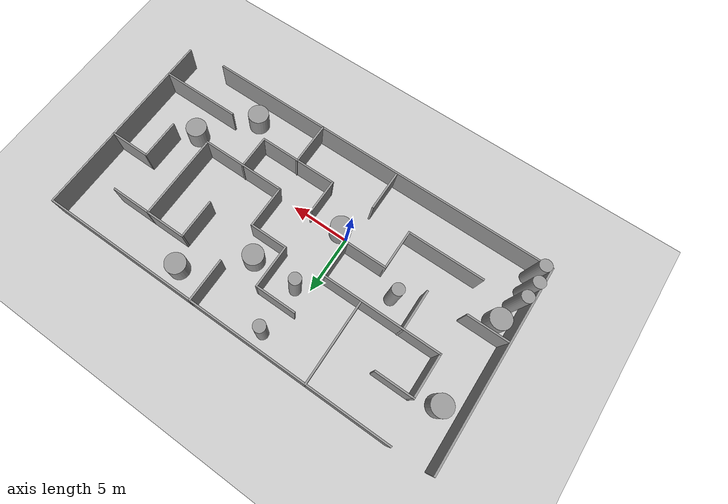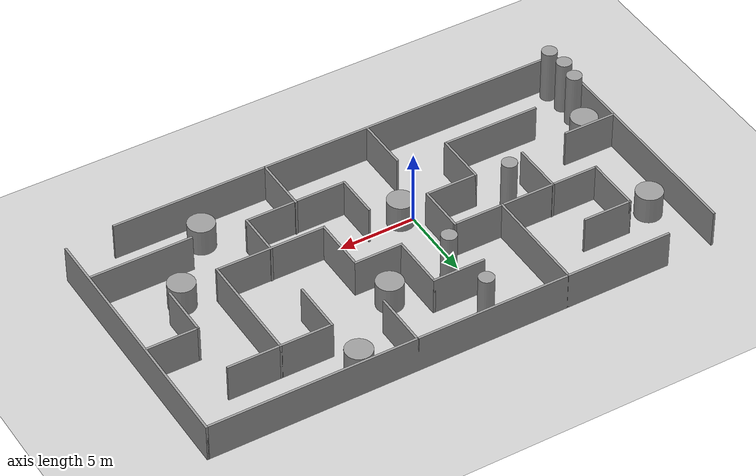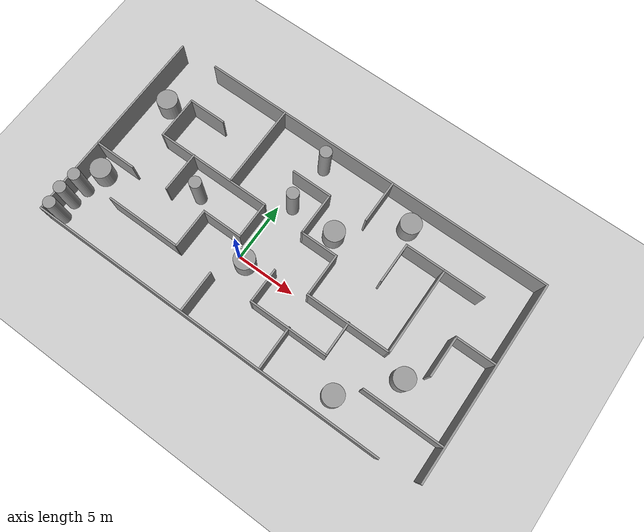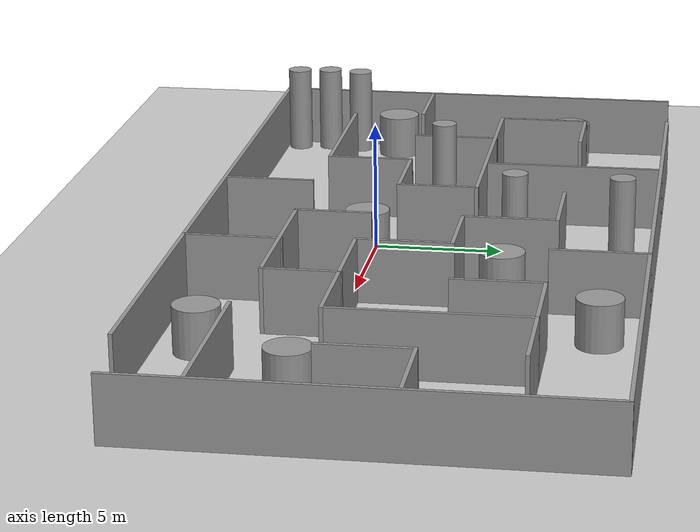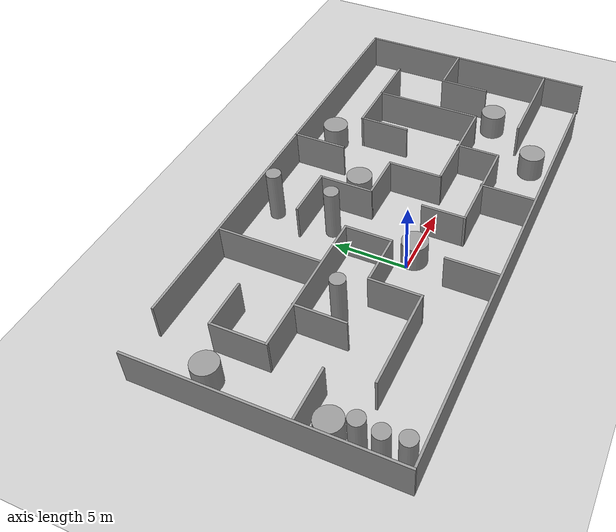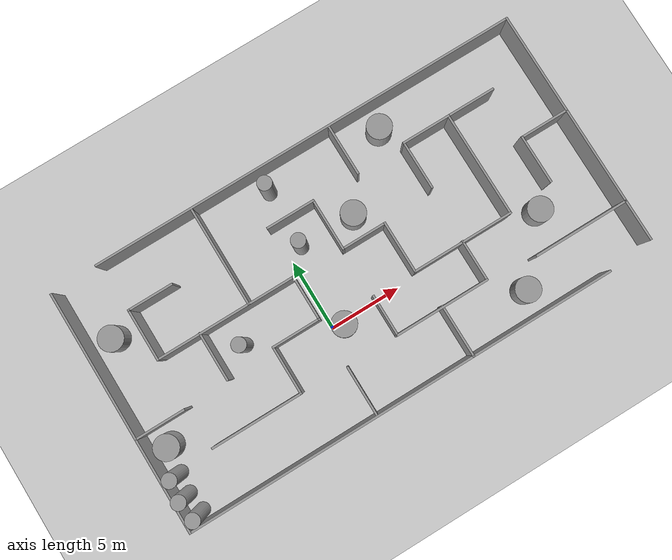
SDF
<sdf version="1.7">
 <world name="default">
  <model name="ground_plane">
   <static>1</static>
   <link name="link">
    <collision name="collision">
     <geometry><plane><normal>0 0 1</normal><size>100 100</size></plane></geometry>
     <surface>
      <contact><collide_bitmask>65535</collide_bitmask></contact>
      <friction><ode><mu>100</mu><mu2>50</mu2></ode></friction>
     </surface>
    </collision>
    <visual name="visual">
     <cast_shadows>0</cast_shadows>
     <geometry><plane><normal>0 0 1</normal><size>100 100</size></plane></geometry>
     <material>
      <script><uri>file://media/materials/scripts/gazebo.material</uri><name>Gazebo/Grey</name></script>
     </material>
    </visual>
   </link>
  </model>
  <light name="sun" type="directional">
   <pose>0 0 10 0 -0 0</pose>
   <diffuse>0.8 0.8 0.8 1</diffuse>
   <specular>0.2 0.2 0.2 1</specular>
   <attenuation>
    <range>1000</range>
    <constant>0.9</constant>
    <linear>0.01</linear>
    <quadratic>0.001</quadratic>
   </attenuation>
   <direction>-0.5 0.1 -0.9</direction>
   <spot><inner_angle>0</inner_angle><outer_angle>0</outer_angle><falloff>0</falloff></spot>
  </light>
  <gravity>0 0 -9.8</gravity>
  <magnetic_field>6e-06 2.3e-05 -4.2e-05</magnetic_field>
  <atmosphere type="adiabatic"/>
  <physics type="ode">
   <max_step_size>0.001</max_step_size>
   <real_time_factor>1</real_time_factor>
   <real_time_update_rate>1000</real_time_update_rate>
  </physics>
  <scene><ambient>0.4 0.4 0.4 1</ambient><background>0.7 0.7 0.7 1</background><shadows>1</shadows></scene>
  <spherical_coordinates>
   <surface_model>EARTH_WGS84</surface_model>
   <latitude_deg>0</latitude_deg>
   <longitude_deg>0</longitude_deg>
   <elevation>0</elevation>
   <heading_deg>0</heading_deg>
  </spherical_coordinates>
  <model name="maze3">
   <pose>3.03441 2.45345 0 0 -0 0</pose>
   <link name="Wall_115">
    <collision name="Wall_115_Collision">
     <geometry><box><size>17.25 0.15 2.5</size></box></geometry>
     <pose>0 0 1.25 0 -0 0</pose>
    </collision>
    <visual name="Wall_115_Visual">
     <pose>0 0 1.25 0 -0 0</pose>
     <geometry><box><size>17.25 0.15 2.5</size></box></geometry>
     <material>
      <script><uri>file://media/materials/scripts/gazebo.material</uri><name>Gazebo/Grey</name></script>
      <ambient>1 1 1 1</ambient>
     </material>
     <meta><layer>0</layer></meta>
    </visual>
    <pose>-16.9493 -0.060341 0 0 -0 -1.5708</pose>
   </link>
   <link name="Wall_116">
    <collision name="Wall_116_Collision">
     <geometry><box><size>30.75 0.15 2.5</size></box></geometry>
     <pose>0 0 1.25 0 -0 0</pose>
    </collision>
    <visual name="Wall_116_Visual">
     <pose>0 0 1.25 0 -0 0</pose>
     <geometry><box><size>30.75 0.15 2.5</size></box></geometry>
     <material>
      <script><uri>file://media/materials/scripts/gazebo.material</uri><name>Gazebo/Grey</name></script>
      <ambient>1 1 1 1</ambient>
     </material>
     <meta><layer>0</layer></meta>
    </visual>
    <pose>-1.64931 -8.61034 0 0 -0 0</pose>
   </link>
   <link name="Wall_118">
    <collision name="Wall_118_Collision">
     <geometry><box><size>30.75 0.15 2.5</size></box></geometry>
     <pose>0 0 1.25 0 -0 0</pose>
    </collision>
    <visual name="Wall_118_Visual">
     <pose>0 0 1.25 0 -0 0</pose>
     <geometry><box><size>30.75 0.15 2.5</size></box></geometry>
     <material>
      <script><uri>file://media/materials/scripts/gazebo.material</uri><name>Gazebo/Grey</name></script>
      <ambient>1 1 1 1</ambient>
     </material>
     <meta><layer>0</layer></meta>
    </visual>
    <pose>1.64931 8.61034 0 0 -0 0</pose>
   </link>
   <link name="Wall_119">
    <collision name="Wall_119_Collision">
     <geometry><box><size>17 0.15 2.5</size></box></geometry>
     <pose>0 0 1.25 0 -0 0</pose>
    </collision>
    <visual name="Wall_119_Visual">
     <pose>0 0 1.25 0 -0 0</pose>
     <geometry><box><size>17 0.15 2.5</size></box></geometry>
     <material>
      <script><uri>file://media/materials/scripts/gazebo.material</uri><name>Gazebo/Grey</name></script>
      <ambient>1 1 1 1</ambient>
     </material>
     <meta><layer>0</layer></meta>
    </visual>
    <pose>16.9493 0.185341 0 0 -0 -1.5708</pose>
   </link>
   <link name="Wall_121">
    <collision name="Wall_121_Collision">
     <geometry><box><size>3.5 0.15 2.5</size></box></geometry>
     <pose>0 0 1.25 0 -0 0</pose>
    </collision>
    <visual name="Wall_121_Visual">
     <pose>0 0 1.25 0 -0 0</pose>
     <geometry><box><size>3.5 0.15 2.5</size></box></geometry>
     <material>
      <script><uri>file://media/materials/scripts/gazebo.material</uri><name>Gazebo/Grey</name></script>
      <ambient>1 1 1 1</ambient>
     </material>
     <meta><layer>0</layer></meta>
    </visual>
    <pose>-15.1939 -2.00963 0 0 -0 0</pose>
   </link>
   <link name="Wall_123">
    <collision name="Wall_123_Collision">
     <geometry><box><size>6.5 0.15 2.5</size></box></geometry>
     <pose>0 0 1.25 0 -0 0</pose>
    </collision>
    <visual name="Wall_123_Visual">
     <pose>0 0 1.25 0 -0 0</pose>
     <geometry><box><size>6.5 0.15 2.5</size></box></geometry>
     <material>
      <script><uri>file://media/materials/scripts/gazebo.material</uri><name>Gazebo/Grey</name></script>
      <ambient>1 1 1 1</ambient>
     </material>
     <meta><layer>0</layer></meta>
    </visual>
    <pose>-9.99296 -4.94621 0 0 -0 0</pose>
   </link>
   <link name="Wall_124">
    <collision name="Wall_124_Collision">
     <geometry><box><size>3.5 0.15 2.5</size></box></geometry>
     <pose>0 0 1.25 0 -0 0</pose>
    </collision>
    <visual name="Wall_124_Visual">
     <pose>0 0 1.25 0 -0 0</pose>
     <geometry><box><size>3.5 0.15 2.5</size></box></geometry>
     <material>
      <script><uri>file://media/materials/scripts/gazebo.material</uri><name>Gazebo/Grey</name></script>
      <ambient>1 1 1 1</ambient>
     </material>
     <meta><layer>0</layer></meta>
    </visual>
    <pose>-6.81796 -3.27121 0 0 -0 1.5708</pose>
   </link>
   <link name="Wall_125">
    <collision name="Wall_125_Collision">
     <geometry><box><size>3.5 0.15 2.5</size></box></geometry>
     <pose>0 0 1.25 0 -0 0</pose>
    </collision>
    <visual name="Wall_125_Visual">
     <pose>0 0 1.25 0 -0 0</pose>
     <geometry><box><size>3.5 0.15 2.5</size></box></geometry>
     <material>
      <script><uri>file://media/materials/scripts/gazebo.material</uri><name>Gazebo/Grey</name></script>
      <ambient>1 1 1 1</ambient>
     </material>
     <meta><layer>0</layer></meta>
    </visual>
    <pose>-5.14296 -1.59621 0 0 -0 0</pose>
   </link>
   <link name="Wall_126">
    <collision name="Wall_126_Collision">
     <geometry><box><size>3.25 0.15 2.5</size></box></geometry>
     <pose>0 0 1.25 0 -0 0</pose>
    </collision>
    <visual name="Wall_126_Visual">
     <pose>0 0 1.25 0 -0 0</pose>
     <geometry><box><size>3.25 0.15 2.5</size></box></geometry>
     <material>
      <script><uri>file://media/materials/scripts/gazebo.material</uri><name>Gazebo/Grey</name></script>
      <ambient>1 1 1 1</ambient>
     </material>
     <meta><layer>0</layer></meta>
    </visual>
    <pose>-3.46796 -0.046207 0 0 -0 1.5708</pose>
   </link>
   <link name="Wall_127">
    <collision name="Wall_127_Collision">
     <geometry><box><size>10 0.15 2.5</size></box></geometry>
     <pose>0 0 1.25 0 -0 0</pose>
    </collision>
    <visual name="Wall_127_Visual">
     <pose>0 0 1.25 0 -0 0</pose>
     <geometry><box><size>10 0.15 2.5</size></box></geometry>
     <material>
      <script><uri>file://media/materials/scripts/gazebo.material</uri><name>Gazebo/Grey</name></script>
      <ambient>1 1 1 1</ambient>
     </material>
     <meta><layer>0</layer></meta>
    </visual>
    <pose>-8.39296 1.50379 0 0 -0 3.14159</pose>
   </link>
   <link name="Wall_128">
    <collision name="Wall_128_Collision">
     <geometry><box><size>3.75 0.15 2.5</size></box></geometry>
     <pose>0 0 1.25 0 -0 0</pose>
    </collision>
    <visual name="Wall_128_Visual">
     <pose>0 0 1.25 0 -0 0</pose>
     <geometry><box><size>3.75 0.15 2.5</size></box></geometry>
     <material>
      <script><uri>file://media/materials/scripts/gazebo.material</uri><name>Gazebo/Grey</name></script>
      <ambient>1 1 1 1</ambient>
     </material>
     <meta><layer>0</layer></meta>
    </visual>
    <pose>-13.318 3.30379 0 0 -0 1.5708</pose>
   </link>
   <link name="Wall_129">
    <collision name="Wall_129_Collision">
     <geometry><box><size>3.25 0.15 2.5</size></box></geometry>
     <pose>0 0 1.25 0 -0 0</pose>
    </collision>
    <visual name="Wall_129_Visual">
     <pose>0 0 1.25 0 -0 0</pose>
     <geometry><box><size>3.25 0.15 2.5</size></box></geometry>
     <material>
      <script><uri>file://media/materials/scripts/gazebo.material</uri><name>Gazebo/Grey</name></script>
      <ambient>1 1 1 1</ambient>
     </material>
     <meta><layer>0</layer></meta>
    </visual>
    <pose>-11.768 5.10379 0 0 -0 0</pose>
   </link>
   <link name="Wall_131">
    <collision name="Wall_131_Collision">
     <geometry><box><size>3.5 0.15 2.5</size></box></geometry>
     <pose>0 0 1.25 0 -0 0</pose>
    </collision>
    <visual name="Wall_131_Visual">
     <pose>0 0 1.25 0 -0 0</pose>
     <geometry><box><size>3.5 0.15 2.5</size></box></geometry>
     <material>
      <script><uri>file://media/materials/scripts/gazebo.material</uri><name>Gazebo/Grey</name></script>
      <ambient>1 1 1 1</ambient>
     </material>
     <meta><layer>0</layer></meta>
    </visual>
    <pose>-10.2716 -0.144636 0 0 -0 -1.5708</pose>
   </link>
   <link name="Wall_133">
    <collision name="Wall_133_Collision">
     <geometry><box><size>7.25 0.15 2.5</size></box></geometry>
     <pose>0 0 1.25 0 -0 0</pose>
    </collision>
    <visual name="Wall_133_Visual">
     <pose>0 0 1.25 0 -0 0</pose>
     <geometry><box><size>7.25 0.15 2.5</size></box></geometry>
     <material>
      <script><uri>file://media/materials/scripts/gazebo.material</uri><name>Gazebo/Grey</name></script>
      <ambient>1 1 1 1</ambient>
     </material>
     <meta><layer>0</layer></meta>
    </visual>
    <pose>-6.73162 5.06034 0 0 -0 -1.5708</pose>
   </link>
   <link name="Wall_135">
    <collision name="Wall_135_Collision">
     <geometry><box><size>3.75 0.15 2.5</size></box></geometry>
     <pose>0 0 1.25 0 -0 0</pose>
    </collision>
    <visual name="Wall_135_Visual">
     <pose>0 0 1.25 0 -0 0</pose>
     <geometry><box><size>3.75 0.15 2.5</size></box></geometry>
     <material>
      <script><uri>file://media/materials/scripts/gazebo.material</uri><name>Gazebo/Grey</name></script>
      <ambient>1 1 1 1</ambient>
     </material>
     <meta><layer>0</layer></meta>
    </visual>
    <pose>3.44585 6.81034 0 0 -0 -1.5708</pose>
   </link>
   <link name="Wall_137">
    <collision name="Wall_137_Collision">
     <geometry><box><size>3.5 0.15 2.5</size></box></geometry>
     <pose>0 0 1.25 0 -0 0</pose>
    </collision>
    <visual name="Wall_137_Visual">
     <pose>0 0 1.25 0 -0 0</pose>
     <geometry><box><size>3.5 0.15 2.5</size></box></geometry>
     <material>
      <script><uri>file://media/materials/scripts/gazebo.material</uri><name>Gazebo/Grey</name></script>
      <ambient>1 1 1 1</ambient>
     </material>
     <meta><layer>0</layer></meta>
    </visual>
    <pose>-1.55686 4.9899 0 0 -0 0</pose>
   </link>
   <link name="Wall_138">
    <collision name="Wall_138_Collision">
     <geometry><box><size>3.75 0.15 2.5</size></box></geometry>
     <pose>0 0 1.25 0 -0 0</pose>
    </collision>
    <visual name="Wall_138_Visual">
     <pose>0 0 1.25 0 -0 0</pose>
     <geometry><box><size>3.75 0.15 2.5</size></box></geometry>
     <material>
      <script><uri>file://media/materials/scripts/gazebo.material</uri><name>Gazebo/Grey</name></script>
      <ambient>1 1 1 1</ambient>
     </material>
     <meta><layer>0</layer></meta>
    </visual>
    <pose>0.118143 3.1899 0 0 -0 -1.5708</pose>
   </link>
   <link name="Wall_139">
    <collision name="Wall_139_Collision">
     <geometry><box><size>3.25 0.15 2.5</size></box></geometry>
     <pose>0 0 1.25 0 -0 0</pose>
    </collision>
    <visual name="Wall_139_Visual">
     <pose>0 0 1.25 0 -0 0</pose>
     <geometry><box><size>3.25 0.15 2.5</size></box></geometry>
     <material>
      <script><uri>file://media/materials/scripts/gazebo.material</uri><name>Gazebo/Grey</name></script>
      <ambient>1 1 1 1</ambient>
     </material>
     <meta><layer>0</layer></meta>
    </visual>
    <pose>1.66814 1.3899 0 0 -0 0</pose>
   </link>
   <link name="Wall_140">
    <collision name="Wall_140_Collision">
     <geometry><box><size>3.75 0.15 2.5</size></box></geometry>
     <pose>0 0 1.25 0 -0 0</pose>
    </collision>
    <visual name="Wall_140_Visual">
     <pose>0 0 1.25 0 -0 0</pose>
     <geometry><box><size>3.75 0.15 2.5</size></box></geometry>
     <material>
      <script><uri>file://media/materials/scripts/gazebo.material</uri><name>Gazebo/Grey</name></script>
      <ambient>1 1 1 1</ambient>
     </material>
     <meta><layer>0</layer></meta>
    </visual>
    <pose>3.21814 -0.410102 0 0 -0 -1.5708</pose>
   </link>
   <link name="Wall_141">
    <collision name="Wall_141_Collision">
     <geometry><box><size>7.25 0.15 2.5</size></box></geometry>
     <pose>0 0 1.25 0 -0 0</pose>
    </collision>
    <visual name="Wall_141_Visual">
     <pose>0 0 1.25 0 -0 0</pose>
     <geometry><box><size>7.25 0.15 2.5</size></box></geometry>
     <material>
      <script><uri>file://media/materials/scripts/gazebo.material</uri><name>Gazebo/Grey</name></script>
      <ambient>1 1 1 1</ambient>
     </material>
     <meta><layer>0</layer></meta>
    </visual>
    <pose>6.76814 -2.2101 0 0 -0 0</pose>
   </link>
   <link name="Wall_142">
    <collision name="Wall_142_Collision">
     <geometry><box><size>7.5 0.15 2.5</size></box></geometry>
     <pose>0 0 1.25 0 -0 0</pose>
    </collision>
    <visual name="Wall_142_Visual">
     <pose>0 0 1.25 0 -0 0</pose>
     <geometry><box><size>7.5 0.15 2.5</size></box></geometry>
     <material>
      <script><uri>file://media/materials/scripts/gazebo.material</uri><name>Gazebo/Grey</name></script>
      <ambient>1 1 1 1</ambient>
     </material>
     <meta><layer>0</layer></meta>
    </visual>
    <pose>10.3181 1.4649 0 0 -0 1.5708</pose>
   </link>
   <link name="Wall_143">
    <collision name="Wall_143_Collision">
     <geometry><box><size>3.5 0.15 2.5</size></box></geometry>
     <pose>0 0 1.25 0 -0 0</pose>
    </collision>
    <visual name="Wall_143_Visual">
     <pose>0 0 1.25 0 -0 0</pose>
     <geometry><box><size>3.5 0.15 2.5</size></box></geometry>
     <material>
      <script><uri>file://media/materials/scripts/gazebo.material</uri><name>Gazebo/Grey</name></script>
      <ambient>1 1 1 1</ambient>
     </material>
     <meta><layer>0</layer></meta>
    </visual>
    <pose>8.64314 5.1399 0 0 -0 3.14159</pose>
   </link>
   <link name="Wall_144">
    <collision name="Wall_144_Collision">
     <geometry><box><size>3.5 0.15 2.5</size></box></geometry>
     <pose>0 0 1.25 0 -0 0</pose>
    </collision>
    <visual name="Wall_144_Visual">
     <pose>0 0 1.25 0 -0 0</pose>
     <geometry><box><size>3.5 0.15 2.5</size></box></geometry>
     <material>
      <script><uri>file://media/materials/scripts/gazebo.material</uri><name>Gazebo/Grey</name></script>
      <ambient>1 1 1 1</ambient>
     </material>
     <meta><layer>0</layer></meta>
    </visual>
    <pose>6.96814 3.4649 0 0 -0 -1.5708</pose>
   </link>
   <link name="Wall_146">
    <collision name="Wall_146_Collision">
     <geometry><box><size>3.5 0.15 2.5</size></box></geometry>
     <pose>0 0 1.25 0 -0 0</pose>
    </collision>
    <visual name="Wall_146_Visual">
     <pose>0 0 1.25 0 -0 0</pose>
     <geometry><box><size>3.5 0.15 2.5</size></box></geometry>
     <material>
      <script><uri>file://media/materials/scripts/gazebo.material</uri><name>Gazebo/Grey</name></script>
      <ambient>1 1 1 1</ambient>
     </material>
     <meta><layer>0</layer></meta>
    </visual>
    <pose>11.9931 5.1399 0 0 -0 0</pose>
   </link>
   <link name="Wall_148">
    <collision name="Wall_148_Collision">
     <geometry><box><size>3.5 0.15 2.5</size></box></geometry>
     <pose>0 0 1.25 0 -0 0</pose>
    </collision>
    <visual name="Wall_148_Visual">
     <pose>0 0 1.25 0 -0 0</pose>
     <geometry><box><size>3.5 0.15 2.5</size></box></geometry>
     <material>
      <script><uri>file://media/materials/scripts/gazebo.material</uri><name>Gazebo/Grey</name></script>
      <ambient>1 1 1 1</ambient>
     </material>
     <meta><layer>0</layer></meta>
    </visual>
    <pose>-3.51345 -6.78212 0 0 -0 -1.5708</pose>
   </link>
   <link name="Wall_150">
    <collision name="Wall_150_Collision">
     <geometry><box><size>6.75 0.15 2.5</size></box></geometry>
     <pose>0 0 1.25 0 -0 0</pose>
    </collision>
    <visual name="Wall_150_Visual">
     <pose>0 0 1.25 0 -0 0</pose>
     <geometry><box><size>6.75 0.15 2.5</size></box></geometry>
     <material>
      <script><uri>file://media/materials/scripts/gazebo.material</uri><name>Gazebo/Grey</name></script>
      <ambient>1 1 1 1</ambient>
     </material>
     <meta><layer>0</layer></meta>
    </visual>
    <pose>13.5845 -5.3887 0 0 -0 0</pose>
   </link>
   <link name="Wall_152">
    <collision name="Wall_152_Collision">
     <geometry><box><size>3.5 0.15 2.5</size></box></geometry>
     <pose>0 0 1.25 0 -0 0</pose>
    </collision>
    <visual name="Wall_152_Visual">
     <pose>0 0 1.25 0 -0 0</pose>
     <geometry><box><size>3.5 0.15 2.5</size></box></geometry>
     <material>
      <script><uri>file://media/materials/scripts/gazebo.material</uri><name>Gazebo/Grey</name></script>
      <ambient>1 1 1 1</ambient>
     </material>
     <meta><layer>0</layer></meta>
    </visual>
    <pose>13.5831 -0.173717 0 0 -0 1.5708</pose>
   </link>
   <link name="Wall_153">
    <collision name="Wall_153_Collision">
     <geometry><box><size>3.5 0.15 2.5</size></box></geometry>
     <pose>0 0 1.25 0 -0 0</pose>
    </collision>
    <visual name="Wall_153_Visual">
     <pose>0 0 1.25 0 -0 0</pose>
     <geometry><box><size>3.5 0.15 2.5</size></box></geometry>
     <material>
      <script><uri>file://media/materials/scripts/gazebo.material</uri><name>Gazebo/Grey</name></script>
      <ambient>1 1 1 1</ambient>
     </material>
     <meta><layer>0</layer></meta>
    </visual>
    <pose>15.2581 1.50128 0 0 -0 0</pose>
   </link>
   <link name="Wall_155">
    <collision name="Wall_155_Collision">
     <geometry><box><size>3 0.15 2.5</size></box></geometry>
     <pose>0 0 1.25 0 -0 0</pose>
    </collision>
    <visual name="Wall_155_Visual">
     <pose>0 0 1.25 0 -0 0</pose>
     <geometry><box><size>3 0.15 2.5</size></box></geometry>
     <material>
      <script><uri>file://media/materials/scripts/gazebo.material</uri><name>Gazebo/Grey</name></script>
      <ambient>1 1 1 1</ambient>
     </material>
     <meta><layer>0</layer></meta>
    </visual>
    <pose>6.7847 -3.59553 0 0 -0 -1.5708</pose>
   </link>
   <link name="Wall_156">
    <collision name="Wall_156_Collision">
     <geometry><box><size>6.75 0.15 2.5</size></box></geometry>
     <pose>0 0 1.25 0 -0 0</pose>
    </collision>
    <visual name="Wall_156_Visual">
     <pose>0 0 1.25 0 -0 0</pose>
     <geometry><box><size>6.75 0.15 2.5</size></box></geometry>
     <material>
      <script><uri>file://media/materials/scripts/gazebo.material</uri><name>Gazebo/Grey</name></script>
      <ambient>1 1 1 1</ambient>
     </material>
     <meta><layer>0</layer></meta>
    </visual>
    <pose>3.4847 -5.02053 0 0 -0 3.14159</pose>
   </link>
   <link name="Wall_157">
    <collision name="Wall_157_Collision">
     <geometry><box><size>3 0.15 2.5</size></box></geometry>
     <pose>0 0 1.25 0 -0 0</pose>
    </collision>
    <visual name="Wall_157_Visual">
     <pose>0 0 1.25 0 -0 0</pose>
     <geometry><box><size>3 0.15 2.5</size></box></geometry>
     <material>
      <script><uri>file://media/materials/scripts/gazebo.material</uri><name>Gazebo/Grey</name></script>
      <ambient>1 1 1 1</ambient>
     </material>
     <meta><layer>0</layer></meta>
    </visual>
    <pose>0.184702 -3.59553 0 0 -0 1.5708</pose>
   </link>
   <link name="Wall_159">
    <collision name="Wall_159_Collision">
     <geometry><box><size>3.75 0.15 2.5</size></box></geometry>
     <pose>0 0 1.25 0 -0 0</pose>
    </collision>
    <visual name="Wall_159_Visual">
     <pose>0 0 1.25 0 -0 0</pose>
     <geometry><box><size>3.75 0.15 2.5</size></box></geometry>
     <material>
      <script><uri>file://media/materials/scripts/gazebo.material</uri><name>Gazebo/Grey</name></script>
      <ambient>1 1 1 1</ambient>
     </material>
     <meta><layer>0</layer></meta>
    </visual>
    <pose>3.5263 -6.76665 0 0 -0 1.5708</pose>
   </link>
   <static>1</static>
  </model>
  <model name="big_cylinder">
   <link name="link_6">
    <inertial>
     <mass>5.40188</mass>
     <inertia><ixx>2.45932</ixx><ixy>0</ixy><ixz>0</ixz><iyy>2.45932</iyy><iyz>0</iyz><izz>2.03968</izz></inertia>
    </inertial>
    <pose>3e-06 3e-06 0 0 -0 0</pose>
    <visual name="visual">
     <geometry><cylinder><radius>0.869008</radius><length>1.78822</length></cylinder></geometry>
     <material>
      <lighting>1</lighting>
      <script><uri>file://media/materials/scripts/gazebo.material</uri><name>Gazebo/Grey</name></script>
      <shader type="pixel"/>
     </material>
    </visual>
    <collision name="collision">
     <geometry><cylinder><radius>0.869008</radius><length>1.78822</length></cylinder></geometry>
     <surface>
      <friction>
       <ode><mu>1</mu><mu2>1</mu2><fdir1>0 0 0</fdir1><slip1>0</slip1><slip2>0</slip2></ode>
       <torsional>
        <coefficient>1</coefficient>
        <patch_radius>0</patch_radius>
        <surface_radius>0</surface_radius>
        <use_patch_radius>1</use_patch_radius>
        <ode><slip>0</slip></ode>
       </torsional>
      </friction>
      <bounce><restitution_coefficient>0</restitution_coefficient><threshold>1e+06</threshold></bounce>
      <contact>
       <collide_without_contact>0</collide_without_contact>
       <collide_without_contact_bitmask>1</collide_without_contact_bitmask>
       <collide_bitmask>1</collide_bitmask>
       <ode>
        <soft_cfm>0</soft_cfm>
        <soft_erp>0.2</soft_erp>
        <kp>1e+13</kp>
        <kd>1</kd>
        <max_vel>0.01</max_vel>
        <min_depth>0</min_depth>
       </ode>
       <bullet>
        <split_impulse>1</split_impulse>
        <split_impulse_penetration_threshold>-0.01</split_impulse_penetration_threshold>
        <soft_cfm>0</soft_cfm>
        <soft_erp>0.2</soft_erp>
        <kp>1e+13</kp>
        <kd>1</kd>
       </bullet>
      </contact>
     </surface>
    </collision>
   </link>
   <static>0</static>
   <pose>11.8521 -4.46733 0.89411 0 -0 0</pose>
  </model>
  <model name="big_cylinder_0">
   <link name="link_6">
    <inertial>
     <mass>5.40188</mass>
     <inertia><ixx>2.45932</ixx><ixy>0</ixy><ixz>0</ixz><iyy>2.45932</iyy><iyz>0</iyz><izz>2.03968</izz></inertia>
    </inertial>
    <pose>3e-06 3e-06 0 0 -0 0</pose>
    <visual name="visual">
     <geometry><cylinder><radius>0.869008</radius><length>1.78822</length></cylinder></geometry>
     <material>
      <lighting>1</lighting>
      <script><uri>file://media/materials/scripts/gazebo.material</uri><name>Gazebo/Grey</name></script>
      <shader type="pixel"/>
     </material>
    </visual>
    <collision name="collision">
     <geometry><cylinder><radius>0.869008</radius><length>1.78822</length></cylinder></geometry>
     <surface>
      <friction>
       <ode><mu>1</mu><mu2>1</mu2><fdir1>0 0 0</fdir1><slip1>0</slip1><slip2>0</slip2></ode>
       <torsional>
        <coefficient>1</coefficient>
        <patch_radius>0</patch_radius>
        <surface_radius>0</surface_radius>
        <use_patch_radius>1</use_patch_radius>
        <ode><slip>0</slip></ode>
       </torsional>
      </friction>
      <bounce><restitution_coefficient>0</restitution_coefficient><threshold>1e+06</threshold></bounce>
      <contact>
       <collide_without_contact>0</collide_without_contact>
       <collide_without_contact_bitmask>1</collide_without_contact_bitmask>
       <collide_bitmask>1</collide_bitmask>
       <ode>
        <soft_cfm>0</soft_cfm>
        <soft_erp>0.2</soft_erp>
        <kp>1e+13</kp>
        <kd>1</kd>
        <max_vel>0.01</max_vel>
        <min_depth>0</min_depth>
       </ode>
       <bullet>
        <split_impulse>1</split_impulse>
        <split_impulse_penetration_threshold>-0.01</split_impulse_penetration_threshold>
        <soft_cfm>0</soft_cfm>
        <soft_erp>0.2</soft_erp>
        <kp>1e+13</kp>
        <kd>1</kd>
       </bullet>
      </contact>
     </surface>
    </collision>
   </link>
   <static>0</static>
   <pose>15.3037 -0.526272 0.89411 0 -0 0</pose>
  </model>
  <model name="big_cylinder_1">
   <link name="link_6">
    <inertial>
     <mass>5.40188</mass>
     <inertia><ixx>2.45932</ixx><ixy>0</ixy><ixz>0</ixz><iyy>2.45932</iyy><iyz>0</iyz><izz>2.03968</izz></inertia>
    </inertial>
    <pose>3e-06 3e-06 0 0 -0 0</pose>
    <visual name="visual">
     <geometry><cylinder><radius>0.869008</radius><length>1.78822</length></cylinder></geometry>
     <material>
      <lighting>1</lighting>
      <script><uri>file://media/materials/scripts/gazebo.material</uri><name>Gazebo/Grey</name></script>
      <shader type="pixel"/>
     </material>
    </visual>
    <collision name="collision">
     <geometry><cylinder><radius>0.869008</radius><length>1.78822</length></cylinder></geometry>
     <surface>
      <friction>
       <ode><mu>1</mu><mu2>1</mu2><fdir1>0 0 0</fdir1><slip1>0</slip1><slip2>0</slip2></ode>
       <torsional>
        <coefficient>1</coefficient>
        <patch_radius>0</patch_radius>
        <surface_radius>0</surface_radius>
        <use_patch_radius>1</use_patch_radius>
        <ode><slip>0</slip></ode>
       </torsional>
      </friction>
      <bounce><restitution_coefficient>0</restitution_coefficient><threshold>1e+06</threshold></bounce>
      <contact>
       <collide_without_contact>0</collide_without_contact>
       <collide_without_contact_bitmask>1</collide_without_contact_bitmask>
       <collide_bitmask>1</collide_bitmask>
       <ode>
        <soft_cfm>0</soft_cfm>
        <soft_erp>0.2</soft_erp>
        <kp>1e+13</kp>
        <kd>1</kd>
        <max_vel>0.01</max_vel>
        <min_depth>0</min_depth>
       </ode>
       <bullet>
        <split_impulse>1</split_impulse>
        <split_impulse_penetration_threshold>-0.01</split_impulse_penetration_threshold>
        <soft_cfm>0</soft_cfm>
        <soft_erp>0.2</soft_erp>
        <kp>1e+13</kp>
        <kd>1</kd>
       </bullet>
      </contact>
     </surface>
    </collision>
   </link>
   <static>0</static>
   <pose>9.35016 9.46345 0.89411 0 -0 0</pose>
  </model>
  <model name="big_cylinder_2">
   <link name="link_6">
    <inertial>
     <mass>5.40188</mass>
     <inertia><ixx>2.45932</ixx><ixy>0</ixy><ixz>0</ixz><iyy>2.45932</iyy><iyz>0</iyz><izz>2.03968</izz></inertia>
    </inertial>
    <pose>3e-06 3e-06 0 0 -0 0</pose>
    <visual name="visual">
     <geometry><cylinder><radius>0.869008</radius><length>1.78822</length></cylinder></geometry>
     <material>
      <lighting>1</lighting>
      <script><uri>file://media/materials/scripts/gazebo.material</uri><name>Gazebo/Grey</name></script>
      <shader type="pixel"/>
     </material>
    </visual>
    <collision name="collision">
     <geometry><cylinder><radius>0.869008</radius><length>1.78822</length></cylinder></geometry>
     <surface>
      <friction>
       <ode><mu>1</mu><mu2>1</mu2><fdir1>0 0 0</fdir1><slip1>0</slip1><slip2>0</slip2></ode>
       <torsional>
        <coefficient>1</coefficient>
        <patch_radius>0</patch_radius>
        <surface_radius>0</surface_radius>
        <use_patch_radius>1</use_patch_radius>
        <ode><slip>0</slip></ode>
       </torsional>
      </friction>
      <bounce><restitution_coefficient>0</restitution_coefficient><threshold>1e+06</threshold></bounce>
      <contact>
       <collide_without_contact>0</collide_without_contact>
       <collide_without_contact_bitmask>1</collide_without_contact_bitmask>
       <collide_bitmask>1</collide_bitmask>
       <ode>
        <soft_cfm>0</soft_cfm>
        <soft_erp>0.2</soft_erp>
        <kp>1e+13</kp>
        <kd>1</kd>
        <max_vel>0.01</max_vel>
        <min_depth>0</min_depth>
       </ode>
       <bullet>
        <split_impulse>1</split_impulse>
        <split_impulse_penetration_threshold>-0.01</split_impulse_penetration_threshold>
        <soft_cfm>0</soft_cfm>
        <soft_erp>0.2</soft_erp>
        <kp>1e+13</kp>
        <kd>1</kd>
       </bullet>
      </contact>
     </surface>
    </collision>
   </link>
   <static>0</static>
   <pose>4.96221 5.53852 0.89411 0 -0 0</pose>
  </model>
  <model name="long_cylinder">
   <link name="link_5">
    <inertial>
     <mass>3.60259</mass>
     <inertia><ixx>4.12154</ixx><ixy>0</ixy><ixz>0</ixz><iyy>4.12154</iyy><iyz>0</iyz><izz>0.450323</izz></inertia>
    </inertial>
    <pose>0 -2e-06 0 0 -0 0</pose>
    <visual name="visual">
     <geometry><cylinder><radius>0.5</radius><length>3.60259</length></cylinder></geometry>
     <material>
      <lighting>1</lighting>
      <script><uri>file://media/materials/scripts/gazebo.material</uri><name>Gazebo/Grey</name></script>
      <shader type="pixel"/>
      <emissive>0 0 0 1</emissive>
     </material>
    </visual>
    <collision name="collision">
     <geometry><cylinder><radius>0.5</radius><length>3.60258</length></cylinder></geometry>
     <surface>
      <friction>
       <ode><mu>1</mu><mu2>1</mu2><fdir1>0 0 0</fdir1><slip1>0</slip1><slip2>0</slip2></ode>
       <torsional>
        <coefficient>1</coefficient>
        <patch_radius>0</patch_radius>
        <surface_radius>0</surface_radius>
        <use_patch_radius>1</use_patch_radius>
        <ode><slip>0</slip></ode>
       </torsional>
      </friction>
      <bounce><restitution_coefficient>0</restitution_coefficient><threshold>1e+06</threshold></bounce>
      <contact>
       <collide_without_contact>0</collide_without_contact>
       <collide_without_contact_bitmask>1</collide_without_contact_bitmask>
       <collide_bitmask>1</collide_bitmask>
       <ode>
        <soft_cfm>0</soft_cfm>
        <soft_erp>0.2</soft_erp>
        <kp>1e+13</kp>
        <kd>1</kd>
        <max_vel>0.01</max_vel>
        <min_depth>0</min_depth>
       </ode>
       <bullet>
        <split_impulse>1</split_impulse>
        <split_impulse_penetration_threshold>-0.01</split_impulse_penetration_threshold>
        <soft_cfm>0</soft_cfm>
        <soft_erp>0.2</soft_erp>
        <kp>1e+13</kp>
        <kd>1</kd>
       </bullet>
      </contact>
     </surface>
    </collision>
   </link>
   <static>0</static>
   <pose>1.0868 9.76973 1.80129 0 -0 0</pose>
  </model>
  <model name="long_cylinder_0">
   <link name="link_5">
    <inertial>
     <mass>3.60259</mass>
     <inertia><ixx>4.12154</ixx><ixy>0</ixy><ixz>0</ixz><iyy>4.12154</iyy><iyz>0</iyz><izz>0.450323</izz></inertia>
    </inertial>
    <pose>0 -2e-06 0 0 -0 0</pose>
    <visual name="visual">
     <geometry><cylinder><radius>0.5</radius><length>3.60259</length></cylinder></geometry>
     <material>
      <lighting>1</lighting>
      <script><uri>file://media/materials/scripts/gazebo.material</uri><name>Gazebo/Grey</name></script>
      <shader type="pixel"/>
      <emissive>0 0 0 1</emissive>
     </material>
    </visual>
    <collision name="collision">
     <geometry><cylinder><radius>0.5</radius><length>3.60258</length></cylinder></geometry>
     <surface>
      <friction>
       <ode><mu>1</mu><mu2>1</mu2><fdir1>0 0 0</fdir1><slip1>0</slip1><slip2>0</slip2></ode>
       <torsional>
        <coefficient>1</coefficient>
        <patch_radius>0</patch_radius>
        <surface_radius>0</surface_radius>
        <use_patch_radius>1</use_patch_radius>
        <ode><slip>0</slip></ode>
       </torsional>
      </friction>
      <bounce><restitution_coefficient>0</restitution_coefficient><threshold>1e+06</threshold></bounce>
      <contact>
       <collide_without_contact>0</collide_without_contact>
       <collide_without_contact_bitmask>1</collide_without_contact_bitmask>
       <collide_bitmask>1</collide_bitmask>
       <ode>
        <soft_cfm>0</soft_cfm>
        <soft_erp>0.2</soft_erp>
        <kp>1e+13</kp>
        <kd>1</kd>
        <max_vel>0.01</max_vel>
        <min_depth>0</min_depth>
       </ode>
       <bullet>
        <split_impulse>1</split_impulse>
        <split_impulse_penetration_threshold>-0.01</split_impulse_penetration_threshold>
        <soft_cfm>0</soft_cfm>
        <soft_erp>0.2</soft_erp>
        <kp>1e+13</kp>
        <kd>1</kd>
       </bullet>
      </contact>
     </surface>
    </collision>
   </link>
   <static>0</static>
   <pose>1.01152 5.61061 1.80128 0 -0 0</pose>
  </model>
  <model name="big_cylinder_3">
   <link name="link_6">
    <inertial>
     <mass>5.40188</mass>
     <inertia><ixx>2.45932</ixx><ixy>0</ixy><ixz>0</ixz><iyy>2.45932</iyy><iyz>0</iyz><izz>2.03968</izz></inertia>
    </inertial>
    <pose>3e-06 3e-06 0 0 -0 0</pose>
    <visual name="visual">
     <geometry><cylinder><radius>0.869008</radius><length>1.78822</length></cylinder></geometry>
     <material>
      <lighting>1</lighting>
      <script><uri>file://media/materials/scripts/gazebo.material</uri><name>Gazebo/Grey</name></script>
      <shader type="pixel"/>
     </material>
    </visual>
    <collision name="collision">
     <geometry><cylinder><radius>0.869008</radius><length>1.78822</length></cylinder></geometry>
     <surface>
      <friction>
       <ode><mu>1</mu><mu2>1</mu2><fdir1>0 0 0</fdir1><slip1>0</slip1><slip2>0</slip2></ode>
       <torsional>
        <coefficient>1</coefficient>
        <patch_radius>0</patch_radius>
        <surface_radius>0</surface_radius>
        <use_patch_radius>1</use_patch_radius>
        <ode><slip>0</slip></ode>
       </torsional>
      </friction>
      <bounce><restitution_coefficient>0</restitution_coefficient><threshold>1e+06</threshold></bounce>
      <contact>
       <collide_without_contact>0</collide_without_contact>
       <collide_without_contact_bitmask>1</collide_without_contact_bitmask>
       <collide_bitmask>1</collide_bitmask>
       <ode>
        <soft_cfm>0</soft_cfm>
        <soft_erp>0.2</soft_erp>
        <kp>1e+13</kp>
        <kd>1</kd>
        <max_vel>0.01</max_vel>
        <min_depth>0</min_depth>
       </ode>
       <bullet>
        <split_impulse>1</split_impulse>
        <split_impulse_penetration_threshold>-0.01</split_impulse_penetration_threshold>
        <soft_cfm>0</soft_cfm>
        <soft_erp>0.2</soft_erp>
        <kp>1e+13</kp>
        <kd>1</kd>
       </bullet>
      </contact>
     </surface>
    </collision>
   </link>
   <static>0</static>
   <pose>0.750403 -0.209836 0.89411 0 -0 0</pose>
  </model>
  <model name="long_cylinder_1">
   <link name="link_5">
    <inertial>
     <mass>3.60259</mass>
     <inertia><ixx>4.12154</ixx><ixy>0</ixy><ixz>0</ixz><iyy>4.12154</iyy><iyz>0</iyz><izz>0.450323</izz></inertia>
    </inertial>
    <pose>0 -2e-06 0 0 -0 0</pose>
    <visual name="visual">
     <geometry><cylinder><radius>0.5</radius><length>3.60259</length></cylinder></geometry>
     <material>
      <lighting>1</lighting>
      <script><uri>file://media/materials/scripts/gazebo.material</uri><name>Gazebo/Grey</name></script>
      <shader type="pixel"/>
      <emissive>0 0 0 1</emissive>
     </material>
    </visual>
    <collision name="collision">
     <geometry><cylinder><radius>0.5</radius><length>3.60258</length></cylinder></geometry>
     <surface>
      <friction>
       <ode><mu>1</mu><mu2>1</mu2><fdir1>0 0 0</fdir1><slip1>0</slip1><slip2>0</slip2></ode>
       <torsional>
        <coefficient>1</coefficient>
        <patch_radius>0</patch_radius>
        <surface_radius>0</surface_radius>
        <use_patch_radius>1</use_patch_radius>
        <ode><slip>0</slip></ode>
       </torsional>
      </friction>
      <bounce><restitution_coefficient>0</restitution_coefficient><threshold>1e+06</threshold></bounce>
      <contact>
       <collide_without_contact>0</collide_without_contact>
       <collide_without_contact_bitmask>1</collide_without_contact_bitmask>
       <collide_bitmask>1</collide_bitmask>
       <ode>
        <soft_cfm>0</soft_cfm>
        <soft_erp>0.2</soft_erp>
        <kp>1e+13</kp>
        <kd>1</kd>
        <max_vel>0.01</max_vel>
        <min_depth>0</min_depth>
       </ode>
       <bullet>
        <split_impulse>1</split_impulse>
        <split_impulse_penetration_threshold>-0.01</split_impulse_penetration_threshold>
        <soft_cfm>0</soft_cfm>
        <soft_erp>0.2</soft_erp>
        <kp>1e+13</kp>
        <kd>1</kd>
       </bullet>
      </contact>
     </surface>
    </collision>
   </link>
   <static>0</static>
   <pose>-13.1256 -5.521 1.80128 0 -0 0</pose>
  </model>
  <model name="long_cylinder_2">
   <link name="link_5">
    <inertial>
     <mass>3.60259</mass>
     <inertia><ixx>4.12154</ixx><ixy>0</ixy><ixz>0</ixz><iyy>4.12154</iyy><iyz>0</iyz><izz>0.450323</izz></inertia>
    </inertial>
    <pose>0 -2e-06 0 0 -0 0</pose>
    <visual name="visual">
     <geometry><cylinder><radius>0.5</radius><length>3.60259</length></cylinder></geometry>
     <material>
      <lighting>1</lighting>
      <script><uri>file://media/materials/scripts/gazebo.material</uri><name>Gazebo/Grey</name></script>
      <shader type="pixel"/>
      <emissive>0 0 0 1</emissive>
     </material>
    </visual>
    <collision name="collision">
     <geometry><cylinder><radius>0.5</radius><length>3.60258</length></cylinder></geometry>
     <surface>
      <friction>
       <ode><mu>1</mu><mu2>1</mu2><fdir1>0 0 0</fdir1><slip1>0</slip1><slip2>0</slip2></ode>
       <torsional>
        <coefficient>1</coefficient>
        <patch_radius>0</patch_radius>
        <surface_radius>0</surface_radius>
        <use_patch_radius>1</use_patch_radius>
        <ode><slip>0</slip></ode>
       </torsional>
      </friction>
      <bounce><restitution_coefficient>0</restitution_coefficient><threshold>1e+06</threshold></bounce>
      <contact>
       <collide_without_contact>0</collide_without_contact>
       <collide_without_contact_bitmask>1</collide_without_contact_bitmask>
       <collide_bitmask>1</collide_bitmask>
       <ode>
        <soft_cfm>0</soft_cfm>
        <soft_erp>0.2</soft_erp>
        <kp>1e+13</kp>
        <kd>1</kd>
        <max_vel>0.01</max_vel>
        <min_depth>0</min_depth>
       </ode>
       <bullet>
        <split_impulse>1</split_impulse>
        <split_impulse_penetration_threshold>-0.01</split_impulse_penetration_threshold>
        <soft_cfm>0</soft_cfm>
        <soft_erp>0.2</soft_erp>
        <kp>1e+13</kp>
        <kd>1</kd>
       </bullet>
      </contact>
     </surface>
    </collision>
   </link>
   <static>0</static>
   <pose>-13.3092 -4.16594 1.80129 0 -0 0</pose>
  </model>
  <model name="long_cylinder_3">
   <link name="link_5">
    <inertial>
     <mass>3.60259</mass>
     <inertia><ixx>4.12154</ixx><ixy>0</ixy><ixz>0</ixz><iyy>4.12154</iyy><iyz>0</iyz><izz>0.450323</izz></inertia>
    </inertial>
    <pose>0 -2e-06 0 0 -0 0</pose>
    <visual name="visual">
     <geometry><cylinder><radius>0.5</radius><length>3.60259</length></cylinder></geometry>
     <material>
      <lighting>1</lighting>
      <script><uri>file://media/materials/scripts/gazebo.material</uri><name>Gazebo/Grey</name></script>
      <shader type="pixel"/>
      <emissive>0 0 0 1</emissive>
     </material>
    </visual>
    <collision name="collision">
     <geometry><cylinder><radius>0.5</radius><length>3.60258</length></cylinder></geometry>
     <surface>
      <friction>
       <ode><mu>1</mu><mu2>1</mu2><fdir1>0 0 0</fdir1><slip1>0</slip1><slip2>0</slip2></ode>
       <torsional>
        <coefficient>1</coefficient>
        <patch_radius>0</patch_radius>
        <surface_radius>0</surface_radius>
        <use_patch_radius>1</use_patch_radius>
        <ode><slip>0</slip></ode>
       </torsional>
      </friction>
      <bounce><restitution_coefficient>0</restitution_coefficient><threshold>1e+06</threshold></bounce>
      <contact>
       <collide_without_contact>0</collide_without_contact>
       <collide_without_contact_bitmask>1</collide_without_contact_bitmask>
       <collide_bitmask>1</collide_bitmask>
       <ode>
        <soft_cfm>0</soft_cfm>
        <soft_erp>0.2</soft_erp>
        <kp>1e+13</kp>
        <kd>1</kd>
        <max_vel>0.01</max_vel>
        <min_depth>0</min_depth>
       </ode>
       <bullet>
        <split_impulse>1</split_impulse>
        <split_impulse_penetration_threshold>-0.01</split_impulse_penetration_threshold>
        <soft_cfm>0</soft_cfm>
        <soft_erp>0.2</soft_erp>
        <kp>1e+13</kp>
        <kd>1</kd>
       </bullet>
      </contact>
     </surface>
    </collision>
   </link>
   <static>0</static>
   <pose>-13.1272 -2.76523 1.80128 0 -0 0</pose>
  </model>
  <model name="big_cylinder_4">
   <link name="link_6">
    <inertial>
     <mass>5.40188</mass>
     <inertia><ixx>2.45932</ixx><ixy>0</ixy><ixz>0</ixz><iyy>2.45932</iyy><iyz>0</iyz><izz>2.03968</izz></inertia>
    </inertial>
    <pose>3e-06 3e-06 0 0 -0 0</pose>
    <visual name="visual">
     <geometry><cylinder><radius>0.869008</radius><length>1.78822</length></cylinder></geometry>
     <material>
      <lighting>1</lighting>
      <script><uri>file://media/materials/scripts/gazebo.material</uri><name>Gazebo/Grey</name></script>
      <shader type="pixel"/>
     </material>
    </visual>
    <collision name="collision">
     <geometry><cylinder><radius>0.869008</radius><length>1.78822</length></cylinder></geometry>
     <surface>
      <friction>
       <ode><mu>1</mu><mu2>1</mu2><fdir1>0 0 0</fdir1><slip1>0</slip1><slip2>0</slip2></ode>
       <torsional>
        <coefficient>1</coefficient>
        <patch_radius>0</patch_radius>
        <surface_radius>0</surface_radius>
        <use_patch_radius>1</use_patch_radius>
        <ode><slip>0</slip></ode>
       </torsional>
      </friction>
      <bounce><restitution_coefficient>0</restitution_coefficient><threshold>1e+06</threshold></bounce>
      <contact>
       <collide_without_contact>0</collide_without_contact>
       <collide_without_contact_bitmask>1</collide_without_contact_bitmask>
       <collide_bitmask>1</collide_bitmask>
       <ode>
        <soft_cfm>0</soft_cfm>
        <soft_erp>0.2</soft_erp>
        <kp>1e+13</kp>
        <kd>1</kd>
        <max_vel>0.01</max_vel>
        <min_depth>0</min_depth>
       </ode>
       <bullet>
        <split_impulse>1</split_impulse>
        <split_impulse_penetration_threshold>-0.01</split_impulse_penetration_threshold>
        <soft_cfm>0</soft_cfm>
        <soft_erp>0.2</soft_erp>
        <kp>1e+13</kp>
        <kd>1</kd>
       </bullet>
      </contact>
     </surface>
    </collision>
   </link>
   <static>0</static>
   <pose>-12.7305 -0.952589 0.89411 0 -0 0</pose>
  </model>
  <model name="long_cylinder_4">
   <link name="link_5">
    <inertial>
     <mass>3.60259</mass>
     <inertia><ixx>4.12154</ixx><ixy>0</ixy><ixz>0</ixz><iyy>4.12154</iyy><iyz>0</iyz><izz>0.450323</izz></inertia>
    </inertial>
    <pose>0 -2e-06 0 0 -0 0</pose>
    <visual name="visual">
     <geometry><cylinder><radius>0.5</radius><length>3.60259</length></cylinder></geometry>
     <material>
      <lighting>1</lighting>
      <script><uri>file://media/materials/scripts/gazebo.material</uri><name>Gazebo/Grey</name></script>
      <shader type="pixel"/>
      <emissive>0 0 0 1</emissive>
     </material>
    </visual>
    <collision name="collision">
     <geometry><cylinder><radius>0.5</radius><length>3.60258</length></cylinder></geometry>
     <surface>
      <friction>
       <ode><mu>1</mu><mu2>1</mu2><fdir1>0 0 0</fdir1><slip1>0</slip1><slip2>0</slip2></ode>
       <torsional>
        <coefficient>1</coefficient>
        <patch_radius>0</patch_radius>
        <surface_radius>0</surface_radius>
        <use_patch_radius>1</use_patch_radius>
        <ode><slip>0</slip></ode>
       </torsional>
      </friction>
      <bounce><restitution_coefficient>0</restitution_coefficient><threshold>1e+06</threshold></bounce>
      <contact>
       <collide_without_contact>0</collide_without_contact>
       <collide_without_contact_bitmask>1</collide_without_contact_bitmask>
       <collide_bitmask>1</collide_bitmask>
       <ode>
        <soft_cfm>0</soft_cfm>
        <soft_erp>0.2</soft_erp>
        <kp>1e+13</kp>
        <kd>1</kd>
        <max_vel>0.01</max_vel>
        <min_depth>0</min_depth>
       </ode>
       <bullet>
        <split_impulse>1</split_impulse>
        <split_impulse_penetration_threshold>-0.01</split_impulse_penetration_threshold>
        <soft_cfm>0</soft_cfm>
        <soft_erp>0.2</soft_erp>
        <kp>1e+13</kp>
        <kd>1</kd>
       </bullet>
      </contact>
     </surface>
    </collision>
   </link>
   <static>0</static>
   <pose>-5.39755 2.03438 1.80128 0 -0 0</pose>
  </model>
  <model name="big_cylinder_5">
   <link name="link_6">
    <inertial>
     <mass>5.40188</mass>
     <inertia><ixx>2.45932</ixx><ixy>0</ixy><ixz>0</ixz><iyy>2.45932</iyy><iyz>0</iyz><izz>2.03968</izz></inertia>
    </inertial>
    <pose>3e-06 3e-06 0 0 -0 0</pose>
    <visual name="visual">
     <geometry><cylinder><radius>0.869008</radius><length>1.78822</length></cylinder></geometry>
     <material>
      <lighting>1</lighting>
      <script><uri>file://media/materials/scripts/gazebo.material</uri><name>Gazebo/Grey</name></script>
      <shader type="pixel"/>
     </material>
    </visual>
    <collision name="collision">
     <geometry><cylinder><radius>0.869008</radius><length>1.78822</length></cylinder></geometry>
     <surface>
      <friction>
       <ode><mu>1</mu><mu2>1</mu2><fdir1>0 0 0</fdir1><slip1>0</slip1><slip2>0</slip2></ode>
       <torsional>
        <coefficient>1</coefficient>
        <patch_radius>0</patch_radius>
        <surface_radius>0</surface_radius>
        <use_patch_radius>1</use_patch_radius>
        <ode><slip>0</slip></ode>
       </torsional>
      </friction>
      <bounce><restitution_coefficient>0</restitution_coefficient><threshold>1e+06</threshold></bounce>
      <contact>
       <collide_without_contact>0</collide_without_contact>
       <collide_without_contact_bitmask>1</collide_without_contact_bitmask>
       <collide_bitmask>1</collide_bitmask>
       <ode>
        <soft_cfm>0</soft_cfm>
        <soft_erp>0.2</soft_erp>
        <kp>1e+13</kp>
        <kd>1</kd>
        <max_vel>0.01</max_vel>
        <min_depth>0</min_depth>
       </ode>
       <bullet>
        <split_impulse>1</split_impulse>
        <split_impulse_penetration_threshold>-0.01</split_impulse_penetration_threshold>
        <soft_cfm>0</soft_cfm>
        <soft_erp>0.2</soft_erp>
        <kp>1e+13</kp>
        <kd>1</kd>
       </bullet>
      </contact>
     </surface>
    </collision>
   </link>
   <static>0</static>
   <pose>-12.2818 6.73654 0.89411 0 -0 0</pose>
  </model>
 </world>
</sdf>
